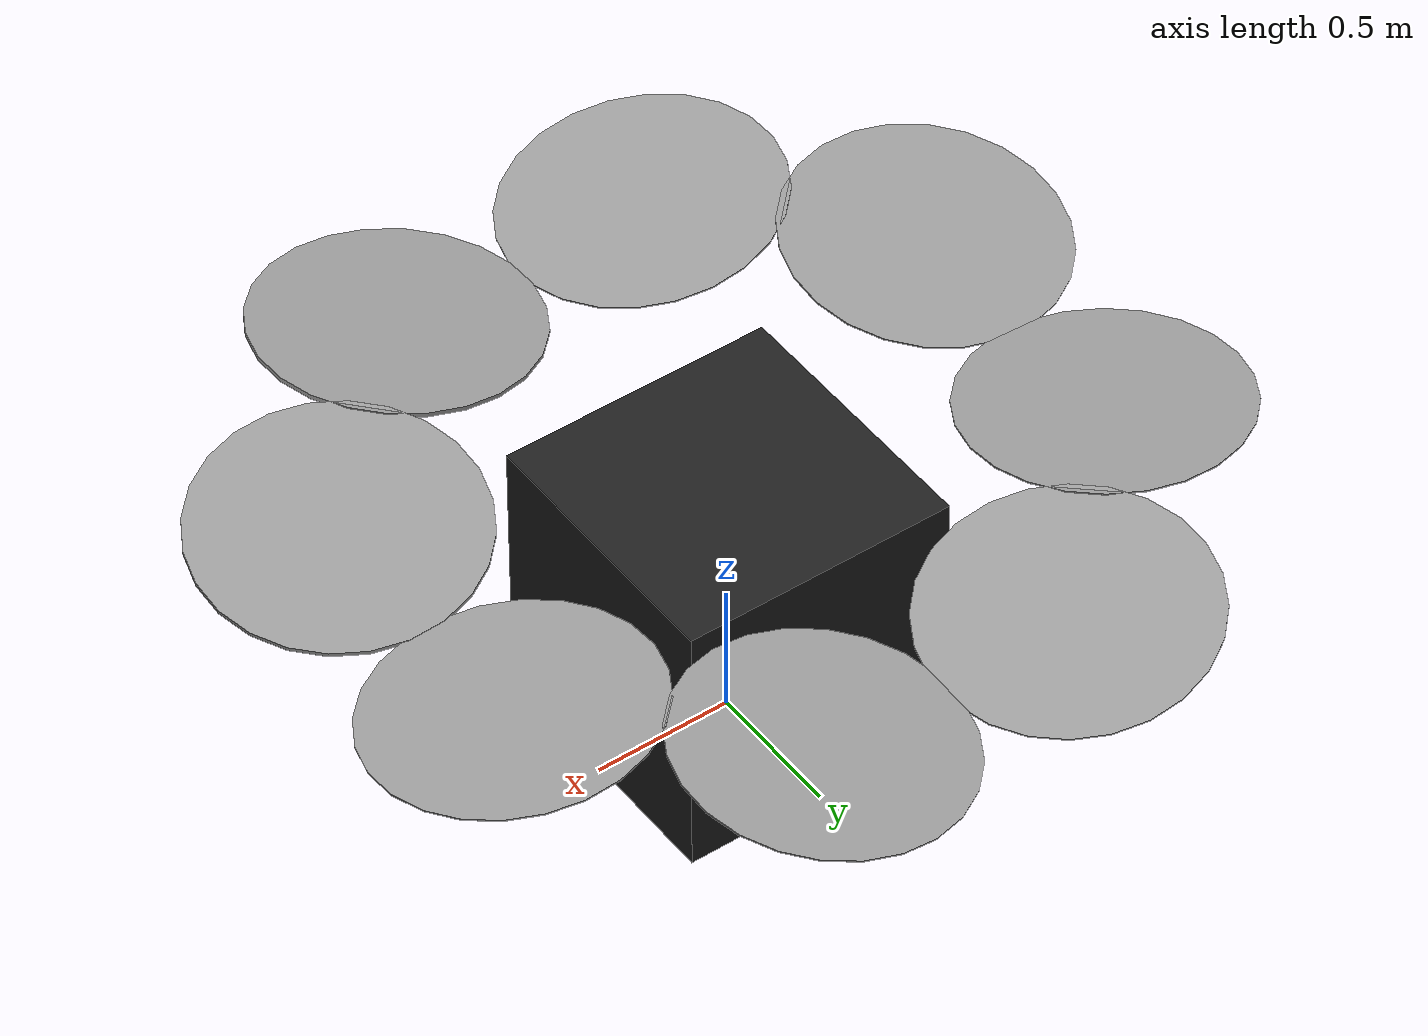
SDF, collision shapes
<?xml version='1.0'?>
<sdf version='1.6'>
  <model name='iris_demo'>
    <include>
      <uri>model://easy_with_standoffs</uri>
    </include>
    <plugin name="rotor_0_blade_1" filename="libLiftDragPlugin.so"> <!-- CW -->
	  <a0>0.4</a0>
	  <alpha_stall>1.4</alpha_stall>
	  <cla>5.5</cla> <!-- Higher lift coefficient for larger propeller -->
	  <cda>0.15</cda> <!-- Higher drag coefficient for larger propeller -->
	  <cma>0.01</cma> <!-- Slight moment coefficient -->
	  <cla_stall>-0.03</cla_stall>
	  <cda_stall>0.0</cda_stall>
	  <cma_stall>0.0</cma_stall>
	  <area>0.073</area> <!-- 38 inches diameter propeller area in square meters -->
	  <air_density>1.225</air_density> <!-- Standard air density at sea level -->
	  <cp>0.084 0 0</cp> <!-- Adjusted position of the center of pressure -->
      <forward>0 -1 0</forward>
      <upward>0 0 1</upward>
      <link_name>iris::rotor_0</link_name>
    </plugin>
    <plugin name="rotor_0_blade_2" filename="libLiftDragPlugin.so">
	  <a0>0.4</a0>
	  <alpha_stall>1.4</alpha_stall>
	  <cla>5.5</cla> <!-- Higher lift coefficient for larger propeller -->
	  <cda>0.15</cda> <!-- Higher drag coefficient for larger propeller -->
	  <cma>0.01</cma> <!-- Slight moment coefficient -->
	  <cla_stall>-0.03</cla_stall>
	  <cda_stall>0.0</cda_stall>
	  <cma_stall>0.0</cma_stall>
	  <area>0.073</area> <!-- 38 inches diameter propeller area in square meters -->
	  <air_density>1.225</air_density> <!-- Standard air density at sea level -->
	  <cp>-0.084 0 0</cp> <!-- Adjusted position of the center of pressure -->
      <forward>0 1 0</forward>
      <upward>0 0 1</upward>
      <link_name>iris::rotor_0</link_name>
    </plugin>
    <plugin name="rotor_1_blade_1" filename="libLiftDragPlugin.so">	<!-- CCW -->
	  <a0>0.4</a0>
	  <alpha_stall>1.4</alpha_stall>
	  <cla>5.5</cla> <!-- Higher lift coefficient for larger propeller -->
	  <cda>0.15</cda> <!-- Higher drag coefficient for larger propeller -->
	  <cma>0.01</cma> <!-- Slight moment coefficient -->
	  <cla_stall>-0.03</cla_stall>
	  <cda_stall>0.0</cda_stall>
	  <cma_stall>0.0</cma_stall>
	  <area>0.073</area> <!-- 38 inches diameter propeller area in square meters -->
	  <air_density>1.225</air_density> <!-- Standard air density at sea level -->
	  <cp>0.084 0 0</cp> <!-- Adjusted position of the center of pressure -->
      <forward>0 1 0</forward>
      <upward>0 0 1</upward>
      <link_name>iris::rotor_1</link_name>
    </plugin>
    <plugin name="rotor_1_blade_2" filename="libLiftDragPlugin.so">
	  <a0>0.4</a0>
	  <alpha_stall>1.4</alpha_stall>
	  <cla>5.5</cla> <!-- Higher lift coefficient for larger propeller -->
	  <cda>0.15</cda> <!-- Higher drag coefficient for larger propeller -->
	  <cma>0.01</cma> <!-- Slight moment coefficient -->
	  <cla_stall>-0.03</cla_stall>
	  <cda_stall>0.0</cda_stall>
	  <cma_stall>0.0</cma_stall>
	  <area>0.073</area> <!-- 38 inches diameter propeller area in square meters -->
	  <air_density>1.225</air_density> <!-- Standard air density at sea level -->
	  <cp>-0.084 0 0</cp> <!-- Adjusted position of the center of pressure -->
      <forward>0 -1 0</forward>
      <upward>0 0 1</upward>
      <link_name>iris::rotor_1</link_name>
    </plugin>
    <plugin name="rotor_2_blade_1" filename="libLiftDragPlugin.so"> <!-- CW -->
	  <a0>0.4</a0>
	  <alpha_stall>1.4</alpha_stall>
	  <cla>5.5</cla> <!-- Higher lift coefficient for larger propeller -->
	  <cda>0.15</cda> <!-- Higher drag coefficient for larger propeller -->
	  <cma>0.01</cma> <!-- Slight moment coefficient -->
	  <cla_stall>-0.03</cla_stall>
	  <cda_stall>0.0</cda_stall>
	  <cma_stall>0.0</cma_stall>
	  <area>0.073</area> <!-- 38 inches diameter propeller area in square meters -->
	  <air_density>1.225</air_density> <!-- Standard air density at sea level -->
	  <cp>0.084 0 0</cp> <!-- Adjusted position of the center of pressure -->
      <forward>0 -1 0</forward>
      <upward>0 0 1</upward>
      <link_name>iris::rotor_2</link_name>
    </plugin>
    <plugin name="rotor_2_blade_2" filename="libLiftDragPlugin.so">
	  <a0>0.4</a0>
	  <alpha_stall>1.4</alpha_stall>
	  <cla>5.5</cla> <!-- Higher lift coefficient for larger propeller -->
	  <cda>0.15</cda> <!-- Higher drag coefficient for larger propeller -->
	  <cma>0.01</cma> <!-- Slight moment coefficient -->
	  <cla_stall>-0.03</cla_stall>
	  <cda_stall>0.0</cda_stall>
	  <cma_stall>0.0</cma_stall>
	  <area>0.073</area> <!-- 38 inches diameter propeller area in square meters -->
	  <air_density>1.225</air_density> <!-- Standard air density at sea level -->
	  <cp>-0.084 0 0</cp> <!-- Adjusted position of the center of pressure -->
      <forward>0 1 0</forward>
      <upward>0 0 1</upward>
      <link_name>iris::rotor_2</link_name>
    </plugin>
    <plugin name="rotor_3_blade_1" filename="libLiftDragPlugin.so"> <!-- CCW -->
	  <a0>0.4</a0>
	  <alpha_stall>1.4</alpha_stall>
	  <cla>5.5</cla> <!-- Higher lift coefficient for larger propeller -->
	  <cda>0.15</cda> <!-- Higher drag coefficient for larger propeller -->
	  <cma>0.01</cma> <!-- Slight moment coefficient -->
	  <cla_stall>-0.03</cla_stall>
	  <cda_stall>0.0</cda_stall>
	  <cma_stall>0.0</cma_stall>
	  <area>0.073</area> <!-- 38 inches diameter propeller area in square meters -->
	  <air_density>1.225</air_density> <!-- Standard air density at sea level -->
	  <cp>0.084 0 0</cp> <!-- Adjusted position of the center of pressure -->
      <forward>0 1 0</forward>
      <upward>0 0 1</upward>
      <link_name>iris::rotor_3</link_name>
    </plugin>
    <plugin name="rotor_3_blade_2" filename="libLiftDragPlugin.so">
	  <a0>0.4</a0>
	  <alpha_stall>1.4</alpha_stall>
	  <cla>5.5</cla> <!-- Higher lift coefficient for larger propeller -->
	  <cda>0.15</cda> <!-- Higher drag coefficient for larger propeller -->
	  <cma>0.01</cma> <!-- Slight moment coefficient -->
	  <cla_stall>-0.03</cla_stall>
	  <cda_stall>0.0</cda_stall>
	  <cma_stall>0.0</cma_stall>
	  <area>0.073</area> <!-- 38 inches diameter propeller area in square meters -->
	  <air_density>1.225</air_density> <!-- Standard air density at sea level -->
	  <cp>-0.084 0 0</cp> <!-- Adjusted position of the center of pressure -->
      <forward>0 -1 0</forward>
      <upward>0 0 1</upward>
      <link_name>iris::rotor_3</link_name>
    </plugin>
    <plugin name="rotor_4_blade_1" filename="libLiftDragPlugin.so"> <!-- CW -->
	  <a0>0.4</a0>
	  <alpha_stall>1.4</alpha_stall>
	  <cla>5.5</cla> <!-- Higher lift coefficient for larger propeller -->
	  <cda>0.15</cda> <!-- Higher drag coefficient for larger propeller -->
	  <cma>0.01</cma> <!-- Slight moment coefficient -->
	  <cla_stall>-0.03</cla_stall>
	  <cda_stall>0.0</cda_stall>
	  <cma_stall>0.0</cma_stall>
	  <area>0.073</area> <!-- 38 inches diameter propeller area in square meters -->
	  <air_density>1.225</air_density> <!-- Standard air density at sea level -->
	  <cp>0.084 0 0</cp> <!-- Adjusted position of the center of pressure -->
      <forward>0 -1 0</forward>
      <upward>0 0 1</upward>
      <link_name>iris::rotor_4</link_name>
    </plugin>
    <plugin name="rotor_4_blade_2" filename="libLiftDragPlugin.so">
	  <a0>0.4</a0>
	  <alpha_stall>1.4</alpha_stall>
	  <cla>5.5</cla> <!-- Higher lift coefficient for larger propeller -->
	  <cda>0.15</cda> <!-- Higher drag coefficient for larger propeller -->
	  <cma>0.01</cma> <!-- Slight moment coefficient -->
	  <cla_stall>-0.03</cla_stall>
	  <cda_stall>0.0</cda_stall>
	  <cma_stall>0.0</cma_stall>
	  <area>0.073</area> <!-- 38 inches diameter propeller area in square meters -->
	  <air_density>1.225</air_density> <!-- Standard air density at sea level -->
	  <cp>-0.084 0 0</cp> <!-- Adjusted position of the center of pressure -->
      <forward>0 1 0</forward>
      <upward>0 0 1</upward>
      <link_name>iris::rotor_4</link_name>
    </plugin>
    <plugin name="rotor_5_blade_1" filename="libLiftDragPlugin.so"> <!-- CCW -->
	  <a0>0.4</a0>
	  <alpha_stall>1.4</alpha_stall>
	  <cla>5.5</cla> <!-- Higher lift coefficient for larger propeller -->
	  <cda>0.15</cda> <!-- Higher drag coefficient for larger propeller -->
	  <cma>0.01</cma> <!-- Slight moment coefficient -->
	  <cla_stall>-0.03</cla_stall>
	  <cda_stall>0.0</cda_stall>
	  <cma_stall>0.0</cma_stall>
	  <area>0.073</area> <!-- 38 inches diameter propeller area in square meters -->
	  <air_density>1.225</air_density> <!-- Standard air density at sea level -->
	  <cp>0.084 0 0</cp> <!-- Adjusted position of the center of pressure -->
      <forward>0 1 0</forward>
      <upward>0 0 1</upward>
      <link_name>iris::rotor_5</link_name>
    </plugin>
    <plugin name="rotor_5_blade_2" filename="libLiftDragPlugin.so">
	  <a0>0.4</a0>
	  <alpha_stall>1.4</alpha_stall>
	  <cla>5.5</cla> <!-- Higher lift coefficient for larger propeller -->
	  <cda>0.15</cda> <!-- Higher drag coefficient for larger propeller -->
	  <cma>0.01</cma> <!-- Slight moment coefficient -->
	  <cla_stall>-0.03</cla_stall>
	  <cda_stall>0.0</cda_stall>
	  <cma_stall>0.0</cma_stall>
	  <area>0.073</area> <!-- 38 inches diameter propeller area in square meters -->
	  <air_density>1.225</air_density> <!-- Standard air density at sea level -->
	  <cp>-0.084 0 0</cp> <!-- Adjusted position of the center of pressure -->
      <forward>0 -1 0</forward>
      <upward>0 0 1</upward>
      <link_name>iris::rotor_5</link_name>
    </plugin>
    <plugin name="rotor_6_blade_1" filename="libLiftDragPlugin.so"> <!-- CW -->
	  <a0>0.4</a0>
	  <alpha_stall>1.4</alpha_stall>
	  <cla>5.5</cla> <!-- Higher lift coefficient for larger propeller -->
	  <cda>0.15</cda> <!-- Higher drag coefficient for larger propeller -->
	  <cma>0.01</cma> <!-- Slight moment coefficient -->
	  <cla_stall>-0.03</cla_stall>
	  <cda_stall>0.0</cda_stall>
	  <cma_stall>0.0</cma_stall>
	  <area>0.073</area> <!-- 38 inches diameter propeller area in square meters -->
	  <air_density>1.225</air_density> <!-- Standard air density at sea level -->
	  <cp>0.084 0 0</cp> <!-- Adjusted position of the center of pressure -->
      <forward>0 -1 0</forward>
      <upward>0 0 1</upward>
      <link_name>iris::rotor_6</link_name>
    </plugin>
    <plugin name="rotor_6_blade_2" filename="libLiftDragPlugin.so">
	  <a0>0.4</a0>
	  <alpha_stall>1.4</alpha_stall>
	  <cla>5.5</cla> <!-- Higher lift coefficient for larger propeller -->
	  <cda>0.15</cda> <!-- Higher drag coefficient for larger propeller -->
	  <cma>0.01</cma> <!-- Slight moment coefficient -->
	  <cla_stall>-0.03</cla_stall>
	  <cda_stall>0.0</cda_stall>
	  <cma_stall>0.0</cma_stall>
	  <area>0.073</area> <!-- 38 inches diameter propeller area in square meters -->
	  <air_density>1.225</air_density> <!-- Standard air density at sea level -->
	  <cp>-0.084 0 0</cp> <!-- Adjusted position of the center of pressure -->
      <forward>0 1 0</forward>
      <upward>0 0 1</upward>
      <link_name>iris::rotor_6</link_name>
    </plugin>
    <plugin name="rotor_7_blade_1" filename="libLiftDragPlugin.so"> <!-- CCW -->
	  <a0>0.4</a0>
	  <alpha_stall>1.4</alpha_stall>
	  <cla>5.5</cla> <!-- Higher lift coefficient for larger propeller -->
	  <cda>0.15</cda> <!-- Higher drag coefficient for larger propeller -->
	  <cma>0.01</cma> <!-- Slight moment coefficient -->
	  <cla_stall>-0.03</cla_stall>
	  <cda_stall>0.0</cda_stall>
	  <cma_stall>0.0</cma_stall>
	  <area>0.073</area> <!-- 38 inches diameter propeller area in square meters -->
	  <air_density>1.225</air_density> <!-- Standard air density at sea level -->
	  <cp>0.084 0 0</cp> <!-- Adjusted position of the center of pressure -->
      <forward>0 1 0</forward>
      <upward>0 0 1</upward>
      <link_name>iris::rotor_7</link_name>
    </plugin>
    <plugin name="rotor_7_blade_2" filename="libLiftDragPlugin.so">
	  <a0>0.4</a0>
	  <alpha_stall>1.4</alpha_stall>
	  <cla>5.5</cla> <!-- Higher lift coefficient for larger propeller -->
	  <cda>0.15</cda> <!-- Higher drag coefficient for larger propeller -->
	  <cma>0.01</cma> <!-- Slight moment coefficient -->
	  <cla_stall>-0.03</cla_stall>
	  <cda_stall>0.0</cda_stall>
	  <cma_stall>0.0</cma_stall>
	  <area>0.073</area> <!-- 38 inches diameter propeller area in square meters -->
	  <air_density>1.225</air_density> <!-- Standard air density at sea level -->
	  <cp>-0.084 0 0</cp> <!-- Adjusted position of the center of pressure -->
	  <forward>0 -1 0</forward>
	  <upward>0 0 1</upward>
      <link_name>iris::rotor_7</link_name>
    </plugin>
    <plugin name="arducopter_plugin" filename="libArduPilotPlugin.so">
      <fdm_addr>127.0.0.1</fdm_addr>
      <fdm_port_in>9002</fdm_port_in>
      <fdm_port_out>9003</fdm_port_out>
      <modelXYZToAirplaneXForwardZDown>0 0 0 3.141593 0 0</modelXYZToAirplaneXForwardZDown>
      <gazeboXYZToNED>0 0 0 3.141593 0 0</gazeboXYZToNED>
      <imuName>iris_demo::iris::iris/imu_link::imu_sensor</imuName>
      <connectionTimeoutMaxCount>5</connectionTimeoutMaxCount>
	       <!--
          RPM = 60 * multiplier / (2 * PI)
        -->
      <control channel="0">
        <type>VELOCITY</type>
        <offset>0</offset>
        <p_gain>0.20</p_gain>
        <i_gain>0</i_gain>
        <d_gain>0</d_gain>
        <i_max>0</i_max>
        <i_min>0</i_min>
        <cmd_max>2.5</cmd_max>
        <cmd_min>-2.5</cmd_min>
        <jointName>iris::rotor_0_joint</jointName>
        <multiplier>-491</multiplier>
        <controlVelocitySlowdownSim>1</controlVelocitySlowdownSim>
      </control>
      <control channel="1">
        <type>VELOCITY</type>
        <offset>0</offset>
        <p_gain>0.20</p_gain>
        <i_gain>0</i_gain>
        <d_gain>0</d_gain>
        <i_max>0</i_max>
        <i_min>0</i_min>
        <cmd_max>2.5</cmd_max>
        <cmd_min>-2.5</cmd_min>
        <jointName>iris::rotor_4_joint</jointName>
        <multiplier>-491</multiplier>
        <controlVelocitySlowdownSim>1</controlVelocitySlowdownSim>
      </control>
      <control channel="2">
        <type>VELOCITY</type>
        <offset>0</offset>
        <p_gain>0.20</p_gain>
        <i_gain>0</i_gain>
        <d_gain>0</d_gain>
        <i_max>0</i_max>
        <i_min>0</i_min>
        <cmd_max>2.5</cmd_max>
        <cmd_min>-2.5</cmd_min>
        <jointName>iris::rotor_1_joint</jointName>
        <multiplier>491</multiplier>
        <controlVelocitySlowdownSim>1</controlVelocitySlowdownSim>
      </control>
      <control channel="3">
        <type>VELOCITY</type>
        <offset>0</offset>
        <p_gain>0.20</p_gain>
        <i_gain>0</i_gain>
        <d_gain>0</d_gain>
        <i_max>0</i_max>
        <i_min>0</i_min>
        <cmd_max>2.5</cmd_max>
        <cmd_min>-2.5</cmd_min>
        <jointName>iris::rotor_3_joint</jointName>
        <multiplier>491</multiplier>
        <controlVelocitySlowdownSim>1</controlVelocitySlowdownSim>
      </control>
      <control channel="4">
        <type>VELOCITY</type>
        <offset>0</offset>
        <p_gain>0.20</p_gain>
        <i_gain>0</i_gain>
        <d_gain>0</d_gain>
        <i_max>0</i_max>
        <i_min>0</i_min>
        <cmd_max>2.5</cmd_max>
        <cmd_min>-2.5</cmd_min>
        <jointName>iris::rotor_7_joint</jointName>
        <multiplier>491</multiplier>
        <controlVelocitySlowdownSim>1</controlVelocitySlowdownSim>
      </control>
      <control channel="5">
        <type>VELOCITY</type>
        <offset>0</offset>
        <p_gain>0.20</p_gain>
        <i_gain>0</i_gain>
        <d_gain>0</d_gain>
        <i_max>0</i_max>
        <i_min>0</i_min>
        <cmd_max>2.5</cmd_max>
        <cmd_min>-2.5</cmd_min>
        <jointName>iris::rotor_5_joint</jointName>
        <multiplier>491</multiplier>
        <controlVelocitySlowdownSim>1</controlVelocitySlowdownSim>
      </control>
      <control channel="6">
        <type>VELOCITY</type>
        <offset>0</offset>
        <p_gain>0.20</p_gain>
        <i_gain>0</i_gain>
        <d_gain>0</d_gain>
        <i_max>0</i_max>
        <i_min>0</i_min>
        <cmd_max>2.5</cmd_max>
        <cmd_min>-2.5</cmd_min>
        <jointName>iris::rotor_6_joint</jointName>
        <multiplier>-491</multiplier>
        <controlVelocitySlowdownSim>1</controlVelocitySlowdownSim>
      </control>
      <control channel="7">
        <type>VELOCITY</type>
        <offset>0</offset>
        <p_gain>0.20</p_gain>
        <i_gain>0</i_gain>
        <d_gain>0</d_gain>
        <i_max>0</i_max>
        <i_min>0</i_min>
        <cmd_max>2.5</cmd_max>
        <cmd_min>-2.5</cmd_min>
        <jointName>iris::rotor_2_joint</jointName>
        <multiplier>-491</multiplier>
        <controlVelocitySlowdownSim>1</controlVelocitySlowdownSim>
      </control>
    </plugin>
  </model>
</sdf>

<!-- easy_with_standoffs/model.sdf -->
<sdf version='1.6'>
  <model name='iris'>
    <pose>0 0 0 0 0 0</pose>
    <link name='base_link'>
      <inertial>
        <mass>58.65</mass>
        <inertia>
          <ixx>18.58</ixx>
          <ixy>0</ixy>
          <ixz>0</ixz>
          <iyy>19.4</iyy>
          <iyz>0</iyz>
          <izz>27.27</izz>
        </inertia>
        <pose>0 0 0.74215 0 0 0</pose>
      </inertial>
      <pose>0 0 0 0 0 1.5708</pose>
      <gravity>1</gravity>
      <self_collide>0</self_collide>
      <kinematic>0</kinematic>
      <enable_wind>1</enable_wind>
      <visual name='visual'>
        <pose>0 0 0 0 -0 0</pose>
        <geometry>
          <mesh>
            <uri>/home/euler/Desktop/Models/EASy/Partes/frame_3.dae</uri>
            <scale>1 1 1</scale>
          </mesh>
        </geometry>
        <material>
          <lighting>1</lighting>
          <script>
            <uri>file://media/materials/scripts/gazebo.material</uri>
            <name>Gazebo/Black</name>
          </script>
			<shader type="pixel" name="gazebo.material">
			  <normal_map>file://media/materials/textures/carbon_fiber_normal.png</normal_map>
			</shader>
          <ambient>0.3 0.3 0.3 1</ambient>
          <diffuse>0.7 0.7 0.7 1</diffuse>
          <specular>0.01 0.01 0.01 1</specular>
          <emissive>0 0 0 1</emissive>
        </material>
        <transparency>0</transparency>
        <cast_shadows>1</cast_shadows>
      </visual>
      <collision name='base_link_collision'>
        <pose>0 0 0.5 0 0 0</pose>
        <geometry>
          <box>
            <size>0.98 0.98 1.00</size>
          </box>
        </geometry>
        <surface>
          <contact>
            <ode>
              <max_vel>100.0</max_vel>
              <min_depth>0.001</min_depth>
            </ode>
          </contact>
          <friction>
            <ode>
              <mu>100000.0</mu>
              <mu2>100000.0</mu2>
            </ode>
          </friction>
        </surface>
      </collision>
    </link>

	<link name='iris/imu_link'>
	  <pose>0 0 0.74215 0 0 0</pose>
	  <inertial>
		<pose>0 0 0 0 0 0</pose>
		<mass>0.15</mass>
		<inertia>
		  <ixx>0.00001</ixx>
		  <ixy>0</ixy>
		  <ixz>0</ixz>
		  <iyy>0.00002</iyy>
		  <iyz>0</iyz>
		  <izz>0.00002</izz>
		</inertia>
	  </inertial>
	  <visual name="imu_visual">
		<pose>0 0 0 3.141593 0 0</pose>
		<geometry>
		  <box>
			<size>0.1 0.05 0.04</size>
		  </box>
		</geometry>
		<material>
		  <script>
			<uri>file://media/materials/scripts/gazebo.material</uri>
			<name>Gazebo/Red</name>
		  </script>
		</material>
	  </visual>
	  <sensor name="imu_sensor" type="imu">
		<pose>0 0 0 3.141593 0 0</pose>
		<always_on>1</always_on>
		<update_rate>1000.0</update_rate>
	  </sensor>
	</link>
    <joint name='iris/imu_joint' type='revolute'>
      <child>iris/imu_link</child>
      <parent>base_link</parent>
      <axis>
        <xyz>0 0 1</xyz>
        <limit>
          <lower>0</lower>
          <upper>0</upper>
          <effort>0</effort>
          <velocity>0</velocity>
        </limit>
        <dynamics>
          <damping>1.0</damping>
        </dynamics>
        <use_parent_model_frame>1</use_parent_model_frame>
      </axis>
      <physics>
        <ode>
          <implicit_spring_damper>1</implicit_spring_damper>
        </ode>
      </physics>
    </joint>

    <link name='rotor_0'>
      <inertial>
        <mass>0.25</mass>
        <inertia>
          <ixx>0.0194</ixx>
          <ixy>0</ixy>
          <ixz>0</ixz>
          <iyy>0.0194</iyy>
          <iyz>0</iyz>
          <izz>0.0097</izz>
        </inertia>
        <pose>0 0 0 0 -0 0</pose>
      </inertial>
      <pose>1.12315 -0.470068 1.08 -0.139626 0 -0.3926991</pose>
      <gravity>1</gravity>
      <self_collide>0</self_collide>
      <kinematic>0</kinematic>
      <enable_wind>1</enable_wind>
      <visual name='visual'>
        <pose>-1.14 -0.46 -1.09 0 -0 0</pose>
        <geometry>
          <mesh>
            <uri>/home/euler/Desktop/Models/EASy/Partes/helicesCCW.dae</uri>
            <scale>1 1 1</scale>
          </mesh>
        </geometry>
        <material>
          <lighting>1</lighting>
          <script>
            <uri>file://media/materials/scripts/gazebo.material</uri>
            <name>Gazebo/Grey</name>
          </script>
          <shader type='pixel'>
            <normal_map>__default__</normal_map>
          </shader>
          <ambient>0.3 0.3 0.3 1</ambient>
          <diffuse>0.7 0.7 0.7 1</diffuse>
          <specular>0.01 0.01 0.01 1</specular>
          <emissive>0 0 0 1</emissive>
        </material>
        <transparency>0</transparency>
        <cast_shadows>1</cast_shadows>
      </visual>
      <collision name='rotor_0_collision'>
        <pose>0 0 0 0 -0 0</pose>
        <geometry>
          <cylinder>
            <length>0.015</length>
            <radius>0.4826</radius>
          </cylinder>
        </geometry>
        <surface>
          <contact>
            <ode/>
          </contact>
          <friction>
            <ode/>
          </friction>
        </surface>
      </collision>
    </link>
	<joint name='rotor_0_joint' type='revolute'>
      <child>rotor_0</child>
      <parent>base_link</parent>
      <axis>
        <xyz>0 0 1</xyz>
        <limit>
          <lower>-1e+16</lower>
          <upper>1e+16</upper>
        </limit>
        <dynamics>
          <damping>0.004</damping>
        </dynamics>
        <use_parent_model_frame>1</use_parent_model_frame>
      </axis>
      <physics>
        <ode>
          <implicit_spring_damper>1</implicit_spring_damper>
        </ode>
      </physics>
    </joint>

    <link name='rotor_1'>
      <inertial>
        <mass>0.25</mass>
        <inertia>
          <ixx>0.0194</ixx>
          <ixy>0</ixy>
          <ixz>0</ixz>
          <iyy>0.0194</iyy>
          <iyz>0</iyz>
          <izz>0.0097</izz>
        </inertia>
        <pose>0 0 0 0 -0 0</pose>
      </inertial>
      <pose>0.472969 -1.11674 1.08 0.139626 0 -1.178097</pose>
      <gravity>1</gravity>
      <self_collide>0</self_collide>
      <kinematic>0</kinematic>
      <enable_wind>1</enable_wind>
      <visual name='visual'>
        <pose>-1.14 -0.46 -1.09 0 -0 0</pose>
        <geometry>
          <mesh>
            <uri>/home/euler/Desktop/Models/EASy/Partes/helicesCCW.dae</uri>
            <scale>1 1 1</scale>
          </mesh>
        </geometry>
        <material>
          <lighting>1</lighting>
          <script>
            <uri>file://media/materials/scripts/gazebo.material</uri>
            <name>Gazebo/Grey</name>
          </script>
          <shader type='pixel'>
            <normal_map>__default__</normal_map>
          </shader>
          <ambient>0.3 0.3 0.3 1</ambient>
          <diffuse>0.7 0.7 0.7 1</diffuse>
          <specular>0.01 0.01 0.01 1</specular>
          <emissive>0 0 0 1</emissive>
        </material>
        <transparency>0</transparency>
        <cast_shadows>1</cast_shadows>
      </visual>
      <collision name='rotor_1_collision'>
        <pose>0 0 0 0 -0 0</pose>
        <geometry>
          <cylinder>
            <length>0.015</length>
            <radius>0.4826</radius>
          </cylinder>
        </geometry>
        <surface>
          <contact>
            <ode/>
          </contact>
          <friction>
            <ode/>
          </friction>
        </surface>
      </collision>
    </link>
    <joint name='rotor_1_joint' type='revolute'>
      <child>rotor_1</child>
      <parent>base_link</parent>
      <axis>
        <xyz>0 0 1</xyz>
        <limit>
          <lower>-1e+16</lower>
          <upper>1e+16</upper>
        </limit>
        <dynamics>
          <damping>0.004</damping>
        </dynamics>
        <use_parent_model_frame>1</use_parent_model_frame>
      </axis>
      <physics>
        <ode>
          <implicit_spring_damper>1</implicit_spring_damper>
        </ode>
      </physics>
    </joint>

    <link name='rotor_2'>
      <collision name='rotor_2_collision'>
        <pose>0 0 0 0 -0 0</pose>
        <geometry>
          <cylinder>
            <length>0.005</length>
            <radius>0.4826</radius>
          </cylinder>
        </geometry>
        <surface>
          <contact>
            <ode/>
          </contact>
          <friction>
            <ode/>
          </friction>
        </surface>
      </collision>
      <inertial>
        <mass>0.25</mass>
        <inertia>
          <ixx>0.0194</ixx>
          <ixy>0</ixy>
          <ixz>0</ixz>
          <iyy>0.0194</iyy>
          <iyz>0</iyz>
          <izz>0.0097</izz>
        </inertia>
        <pose>0 0 0 0 -0 0</pose>
      </inertial>
      <pose>-0.475712 -1.12224 1.08 -0.139626 -0 -1.9634954</pose>
      <gravity>1</gravity>
      <self_collide>0</self_collide>
      <kinematic>0</kinematic>
      <enable_wind>1</enable_wind>
      <visual name='visual'>
        <pose>-1.14 -0.46 -1.09 0 -0 0</pose>
        <geometry>
          <mesh>
            <uri>/home/euler/Desktop/Models/EASy/Partes/helicesCCW.dae</uri>
            <scale>1 1 1</scale>
          </mesh>
        </geometry>
        <material>
          <lighting>1</lighting>
          <script>
            <uri>file://media/materials/scripts/gazebo.material</uri>
            <name>Gazebo/Grey</name>
          </script>
          <shader type='pixel'>
            <normal_map>__default__</normal_map>
          </shader>
          <ambient>0.3 0.3 0.3 1</ambient>
          <diffuse>0.7 0.7 0.7 1</diffuse>
          <specular>0.01 0.01 0.01 1</specular>
          <emissive>0 0 0 1</emissive>
        </material>
        <transparency>0</transparency>
        <cast_shadows>1</cast_shadows>
      </visual>
    </link>
    <joint name='rotor_2_joint' type='revolute'>
      <child>rotor_2</child>
      <parent>base_link</parent>
      <axis>
        <xyz>0 0 1</xyz>
        <limit>
          <lower>-1e+16</lower>
          <upper>1e+16</upper>
        </limit>
        <dynamics>
          <damping>0.004</damping>
        </dynamics>
        <use_parent_model_frame>1</use_parent_model_frame>
      </axis>
      <physics>
        <ode>
          <implicit_spring_damper>1</implicit_spring_damper>
        </ode>
      </physics>
    </joint>

    <link name='rotor_3'>
      <collision name='rotor_3_collision'>
        <pose>0 0 0 0 -0 0</pose>
        <geometry>
          <cylinder>
            <length>0.005</length>
            <radius>0.4826</radius>
          </cylinder>
        </geometry>
        <surface>
          <contact>
            <ode/>
          </contact>
          <friction>
            <ode/>
          </friction>
        </surface>
      </collision>
      <inertial>
        <mass>0.25</mass>
        <inertia>
          <ixx>0.0194</ixx>
          <ixy>0</ixy>
          <ixz>0</ixz>
          <iyy>0.0194</iyy>
          <iyz>0</iyz>
          <izz>0.0097</izz>
        </inertia>
        <pose>0 0 0 0 -0 0</pose>
      </inertial>
      <pose>-1.11268 -0.460514 1.08 0.139626 -0 -2.7488936</pose>
      <gravity>1</gravity>
      <self_collide>0</self_collide>
      <kinematic>0</kinematic>
      <enable_wind>1</enable_wind>
      <visual name='visual'>
        <pose>-1.14 -0.46 -1.09 0 -0 0</pose>
        <geometry>
          <mesh>
            <uri>/home/euler/Desktop/Models/EASy/Partes/helicesCCW.dae</uri>
            <scale>1 1 1</scale>
          </mesh>
        </geometry>
        <material>
          <lighting>1</lighting>
          <script>
            <uri>file://media/materials/scripts/gazebo.material</uri>
            <name>Gazebo/Grey</name>
          </script>
          <shader type='pixel'>
            <normal_map>__default__</normal_map>
          </shader>
          <ambient>0.3 0.3 0.3 1</ambient>
          <diffuse>0.7 0.7 0.7 1</diffuse>
          <specular>0.01 0.01 0.01 1</specular>
          <emissive>0 0 0 1</emissive>
        </material>
        <transparency>0</transparency>
        <cast_shadows>1</cast_shadows>
      </visual>
    </link>
    <joint name='rotor_3_joint' type='revolute'>
      <child>rotor_3</child>
      <parent>base_link</parent>
      <axis>
        <xyz>0 0 1</xyz>
        <limit>
          <lower>-1e+16</lower>
          <upper>1e+16</upper>
        </limit>
        <dynamics>
          <damping>0.004</damping>
        </dynamics>
        <use_parent_model_frame>1</use_parent_model_frame>
      </axis>
      <physics>
        <ode>
          <implicit_spring_damper>1</implicit_spring_damper>
        </ode>
      </physics>
    </joint>

    <link name='rotor_4'>
      <collision name='rotor_4_collision'>
        <pose>0 0 0 0 -0 0</pose>
        <geometry>
          <cylinder>
            <length>0.005</length>
            <radius>0.4826</radius>
          </cylinder>
        </geometry>
        <surface>
          <contact>
            <ode/>
          </contact>
          <friction>
            <ode/>
          </friction>
        </surface>
      </collision>
      <inertial>
        <mass>0.25</mass>
        <inertia>
          <ixx>0.0194</ixx>
          <ixy>0</ixy>
          <ixz>0</ixz>
          <iyy>0.0194</iyy>
          <iyz>0</iyz>
          <izz>0.0097</izz>
        </inertia>
        <pose>0 0 0 0 -0 0</pose>
      </inertial>
      <pose>-1.11174 0.465589 1.08 -0.139626 0 2.7488936</pose>
      <gravity>1</gravity>
      <self_collide>0</self_collide>
      <kinematic>0</kinematic>
      <enable_wind>1</enable_wind>
      <visual name='visual'>
        <pose>-1.14 -0.46 -1.09 0 -0 0</pose>
        <geometry>
          <mesh>
            <uri>/home/euler/Desktop/Models/EASy/Partes/helicesCCW.dae</uri>
            <scale>1 1 1</scale>
          </mesh>
        </geometry>
        <material>
          <lighting>1</lighting>
          <script>
            <uri>file://media/materials/scripts/gazebo.material</uri>
            <name>Gazebo/Grey</name>
          </script>
          <shader type='pixel'>
            <normal_map>__default__</normal_map>
          </shader>
          <ambient>0.3 0.3 0.3 1</ambient>
          <diffuse>0.7 0.7 0.7 1</diffuse>
          <specular>0.01 0.01 0.01 1</specular>
          <emissive>0 0 0 1</emissive>
        </material>
        <transparency>0</transparency>
        <cast_shadows>1</cast_shadows>
      </visual>
    </link>
    <joint name='rotor_4_joint' type='revolute'>
      <child>rotor_4</child>
      <parent>base_link</parent>
      <axis>
        <xyz>0 0 1</xyz>
        <limit>
          <lower>-1e+16</lower>
          <upper>1e+16</upper>
        </limit>
        <dynamics>
          <damping>0.004</damping>
        </dynamics>
        <use_parent_model_frame>1</use_parent_model_frame>
      </axis>
      <physics>
        <ode>
          <implicit_spring_damper>1</implicit_spring_damper>
        </ode>
      </physics>
    </joint>

    <link name='rotor_5'>
      <collision name='rotor_5_collision'>
        <pose>0 0 0 0 -0 0</pose>
        <geometry>
          <cylinder>
            <length>0.005</length>
            <radius>0.4826</radius>
          </cylinder>
        </geometry>
        <surface>
          <contact>
            <ode/>
          </contact>
          <friction>
            <ode/>
          </friction>
        </surface>
      </collision>
      <inertial>
        <mass>0.25</mass>
        <inertia>
          <ixx>0.0194</ixx>
          <ixy>0</ixy>
          <ixz>0</ixz>
          <iyy>0.0194</iyy>
          <iyz>0</iyz>
          <izz>0.0097</izz>
        </inertia>
        <pose>0 0 0 0 -0 0</pose>
      </inertial>
      <pose>-0.46537 1.11505 1.08 0.139626 -0 1.9634954</pose>
      <gravity>1</gravity>
      <self_collide>0</self_collide>
      <kinematic>0</kinematic>
      <enable_wind>1</enable_wind>
      <visual name='visual'>
        <pose>-1.14 -0.46 -1.09 0 -0 0</pose>
        <geometry>
          <mesh>
            <uri>/home/euler/Desktop/Models/EASy/Partes/helicesCCW.dae</uri>
            <scale>1 1 1</scale>
          </mesh>
        </geometry>
        <material>
          <lighting>1</lighting>
          <script>
            <uri>file://media/materials/scripts/gazebo.material</uri>
            <name>Gazebo/Grey</name>
          </script>
          <shader type='pixel'>
            <normal_map>__default__</normal_map>
          </shader>
          <ambient>0.3 0.3 0.3 1</ambient>
          <diffuse>0.7 0.7 0.7 1</diffuse>
          <specular>0.01 0.01 0.01 1</specular>
          <emissive>0 0 0 1</emissive>
        </material>
        <transparency>0</transparency>
        <cast_shadows>1</cast_shadows>
      </visual>
    </link>
    <joint name='rotor_5_joint' type='revolute'>
      <child>rotor_5</child>
      <parent>base_link</parent>
      <axis>
        <xyz>0 0 1</xyz>
        <limit>
          <lower>-1e+16</lower>
          <upper>1e+16</upper>
        </limit>
        <dynamics>
          <damping>0.004</damping>
        </dynamics>
        <use_parent_model_frame>1</use_parent_model_frame>
      </axis>
      <physics>
        <ode>
          <implicit_spring_damper>1</implicit_spring_damper>
        </ode>
      </physics>
    </joint>

    <link name='rotor_6'>
      <collision name='rotor_6_collision'>
        <pose>0 0 0 0 -0 0</pose>
        <geometry>
          <cylinder>
            <length>0.005</length>
            <radius>0.4826</radius>
          </cylinder>
        </geometry>
        <surface>
          <contact>
            <ode/>
          </contact>
          <friction>
            <ode/>
          </friction>
        </surface>
      </collision>
      <inertial>
        <mass>0.25</mass>
        <inertia>
          <ixx>0.0194</ixx>
          <ixy>0</ixy>
          <ixz>0</ixz>
          <iyy>0.0194</iyy>
          <iyz>0</iyz>
          <izz>0.0097</izz>
        </inertia>
        <pose>0 0 0 0 -0 0</pose>
      </inertial>
      <pose>0.458149 1.12087 1.08 -0.139626 -0 1.178097</pose>
      <gravity>1</gravity>
      <self_collide>0</self_collide>
      <kinematic>0</kinematic>
      <enable_wind>1</enable_wind>
      <visual name='visual'>
        <pose>-1.14 -0.46 -1.09 0 -0 0</pose>
        <geometry>
          <mesh>
            <uri>/home/euler/Desktop/Models/EASy/Partes/helicesCCW.dae</uri>
            <scale>1 1 1</scale>
          </mesh>
        </geometry>
        <material>
          <lighting>1</lighting>
          <script>
            <uri>file://media/materials/scripts/gazebo.material</uri>
            <name>Gazebo/Grey</name>
          </script>
          <shader type='pixel'>
            <normal_map>__default__</normal_map>
          </shader>
          <ambient>0.3 0.3 0.3 1</ambient>
          <diffuse>0.7 0.7 0.7 1</diffuse>
          <specular>0.01 0.01 0.01 1</specular>
          <emissive>0 0 0 1</emissive>
        </material>
        <transparency>0</transparency>
        <cast_shadows>1</cast_shadows>
      </visual>
    </link>
    <joint name='rotor_6_joint' type='revolute'>
      <child>rotor_6</child>
      <parent>base_link</parent>
      <axis>
        <xyz>0 0 1</xyz>
        <limit>
          <lower>-1e+16</lower>
          <upper>1e+16</upper>
        </limit>
        <dynamics>
          <damping>0.004</damping>
        </dynamics>
        <use_parent_model_frame>1</use_parent_model_frame>
      </axis>
      <physics>
        <ode>
          <implicit_spring_damper>1</implicit_spring_damper>
        </ode>
      </physics>
    </joint>

    <link name='rotor_7'>
      <collision name='rotor_7_collision'>
        <pose>0 0 0 0 -0 0</pose>
        <geometry>
          <cylinder>
            <length>0.005</length>
            <radius>0.4826</radius>
          </cylinder>
        </geometry>
        <surface>
          <contact>
            <ode/>
          </contact>
          <friction>
            <ode/>
          </friction>
        </surface>
      </collision>
      <inertial>
        <mass>0.25</mass>
        <inertia>
          <ixx>0.0194</ixx>
          <ixy>0</ixy>
          <ixz>0</ixz>
          <iyy>0.0194</iyy>
          <iyz>0</iyz>
          <izz>0.0097</izz>
        </inertia>
        <pose>0 0 0 0 -0 0</pose>
      </inertial>
      <pose>1.12562 0.464026 1.08 0.139626 -0 0.3926991</pose>
      <gravity>1</gravity>
      <self_collide>0</self_collide>
      <kinematic>0</kinematic>
      <enable_wind>1</enable_wind>
      <visual name='visual'>
        <pose>-1.14 -0.46 -1.09 0 -0 0</pose>
        <geometry>
          <mesh>
            <uri>/home/euler/Desktop/Models/EASy/Partes/helicesCCW.dae</uri>
            <scale>1 1 1</scale>
          </mesh>
        </geometry>
        <material>
          <lighting>1</lighting>
          <script>
            <uri>file://media/materials/scripts/gazebo.material</uri>
            <name>Gazebo/Grey</name>
          </script>
          <shader type='pixel'>
            <normal_map>__default__</normal_map>
          </shader>
          <ambient>0.3 0.3 0.3 1</ambient>
          <diffuse>0.7 0.7 0.7 1</diffuse>
          <specular>0.01 0.01 0.01 1</specular>
          <emissive>0 0 0 1</emissive>
        </material>
        <transparency>0</transparency>
        <cast_shadows>1</cast_shadows>
      </visual>
    </link>
    <joint name='rotor_7_joint' type='revolute'>
      <child>rotor_7</child>
      <parent>base_link</parent>
      <axis>
        <xyz>0 0 1</xyz>
        <limit>
          <lower>-1e+16</lower>
          <upper>1e+16</upper>
        </limit>
        <dynamics>
          <damping>0.004</damping>
        </dynamics>
        <use_parent_model_frame>1</use_parent_model_frame>
      </axis>
      <physics>
        <ode>
          <implicit_spring_damper>1</implicit_spring_damper>
        </ode>
      </physics>
    </joint>
    <static>0</static>
  </model>
</sdf>
